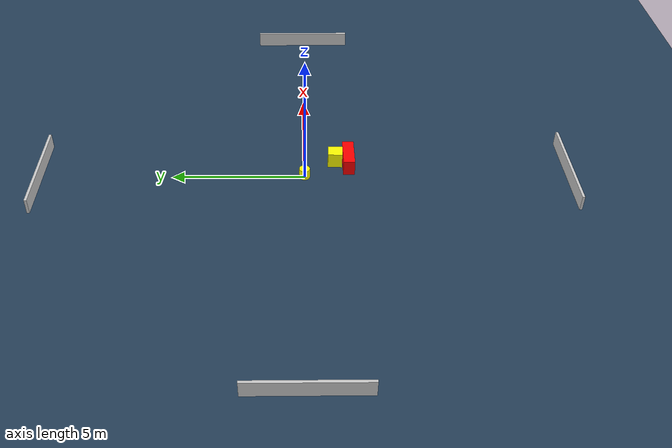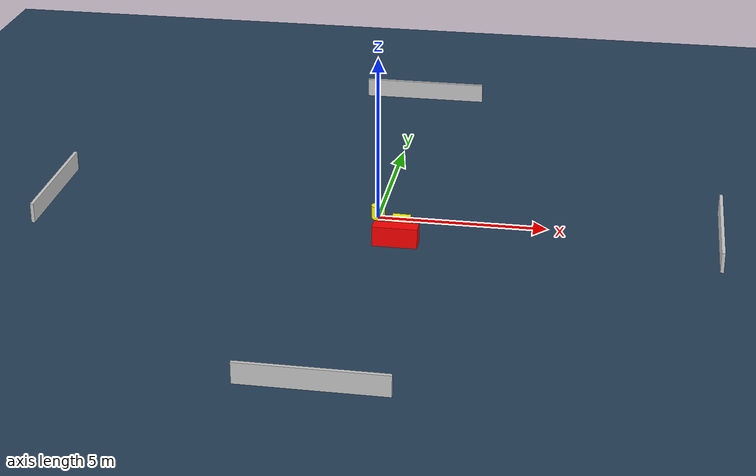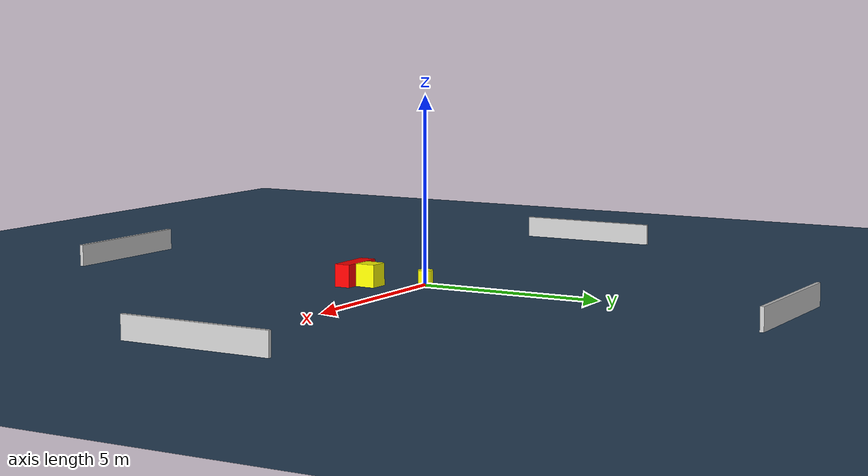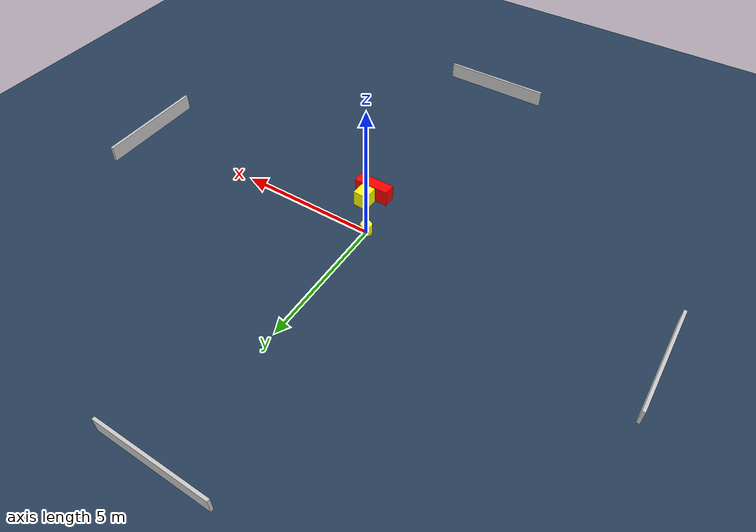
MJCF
<?xml version="1.0" ?>
<mujoco model="generated_environment">
  <option timestep="0.01" integrator="RK4" cone="elliptic"/>
  <default>
    <geom density="1"/>
  </default>
  <asset>
    <texture builtin="gradient" height="3072" name="skybox" rgb1="0.3 0.5 0.7" rgb2="0 0 0" type="skybox" width="512"/>
    <texture builtin="checker" height="300" name="groundplane" rgb1="0.2 0.3 0.4" rgb2="0.1 0.2 0.3" type="2d" width="300"/>
    <material name="groundplane" reflectance="0.2" texrepeat="5 5" texture="groundplane"/>
  </asset>
  <worldbody>
    <light dir="0 0 -1" directional="true" pos="0 0 1.5"/>
    <geom condim="3" friction="0.5 0.005 0.001" material="groundplane" name="floor" pos="0 0 0" size="0 0 0.05" type="plane"/>
    <body name="walls">
      <geom name="wall_1" condim="4" pos="-10.0 0.0 0.3" rgba="0.800000011920929 0.800000011920929 0.800000011920929 1.0" size="0.05 2.0 0.3" type="box"/>
      <geom name="wall_2" condim="4" pos="10.0 0.0 0.3" rgba="0.800000011920929 0.800000011920929 0.800000011920929 1.0" size="0.05 2.0 0.3" type="box"/>
      <geom name="wall_3" condim="4" pos="0.0 -10.0 0.3" rgba="0.800000011920929 0.800000011920929 0.800000011920929 1.0" size="2.0 0.05 0.3" type="box"/>
      <geom name="wall_4" condim="4" pos="0.0 10.0 0.3" rgba="0.800000011920929 0.800000011920929 0.800000011920929 1.0" size="2.0 0.05 0.3" type="box"/>
    </body>
    <body name="robot">
      <joint name="joint_x" type="slide" pos="0 0 0" axis="1 0 0"/>
      <joint name="joint_y" type="slide" pos="0 0 0" axis="0 1 0"/>
      <geom name="robot" type="cylinder" pos="0.0 0.0 0.2" size="0.2 0.2 0.0" mass="5.0" friction="1.0 0.005 0.0001" condim="4" rgba="1.0 1.0 0.0 1.0"/>
    </body>
    <body name="obstacle_1_movable">
      <geom name="obstacle_1_movable" condim="4" pos="0.8437679467867348 -1.1842700941651423 0.3" euler="0 0 267.9201405659638" friction="0.0 0.005 0.001" rgba="1.0 1.0 0.0 1.0" size="0.27611715575346507 0.2636487760518351 0.3" type="box" mass="0.1"/>
      <joint type="free"/>
    </body>
    <body name="obstacle_2_static">
      <geom name="obstacle_2_static" condim="4" pos="0.7756856154431185 -1.6916617334682789 0.3" euler="0 0 0.14440006352956836" friction="0.0 0.005 0.001" rgba="1.0 0.0 0.0 1.0" size="0.652804355592303 0.21948078958337103 0.3" type="box"/>
    </body>
  </worldbody>
  <actuator>
    <motor name="actuator_x" joint="joint_x" gear="1" ctrlrange="-1 1"/>
    <motor name="actuator_y" joint="joint_y" gear="1" ctrlrange="-1 1"/>
  </actuator>
</mujoco>
